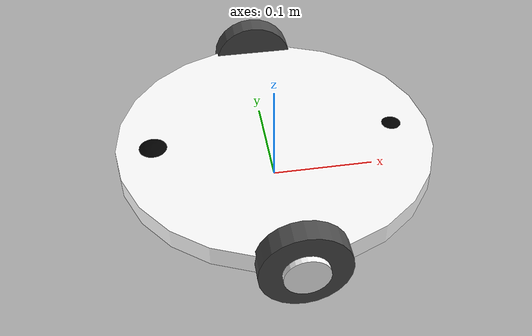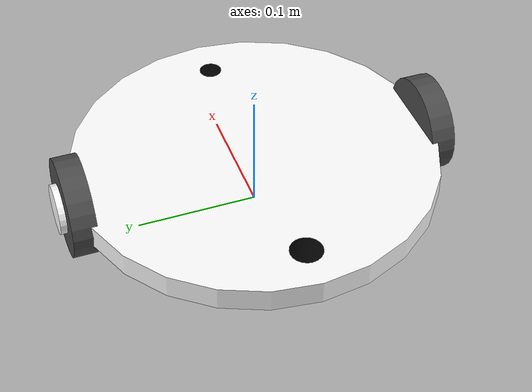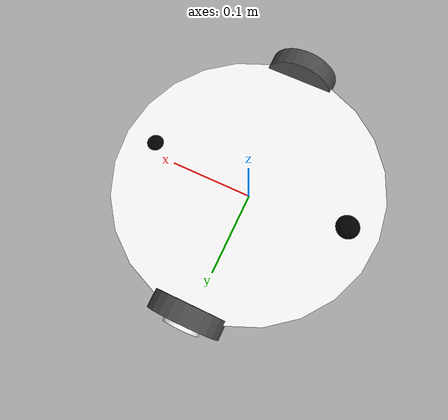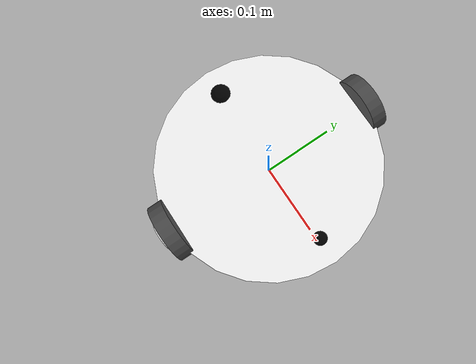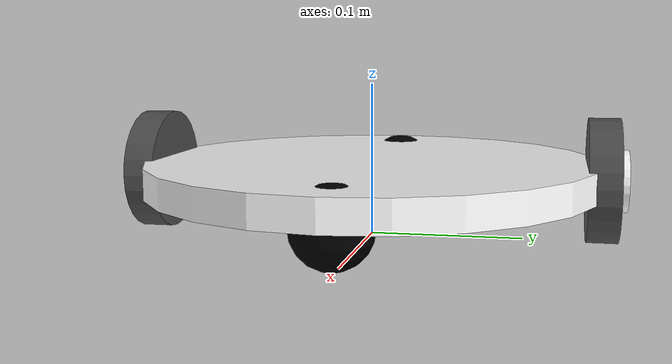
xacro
<?xml version="1.0"?>
<robot name="diff_wheeled_robot" xmlns:xacro="http://ros.org/wiki/xacro">

  <xacro:include filename="$(find imcoders_description)/urdf/wheel.urdf.xacro" />

<!-- Defining the colors used in this robot -->
  <material name="Black">
    <color rgba="0.0 0.0 0.0 1.0"/>
  </material>

  <material name="Red">
    <color rgba="0.8 0.0 0.0 1.0"/>
  </material>

  <material name="White">
    <color rgba="1.0 1.0 1.0 1.0"/>
  </material>

  <material name="Blue">
    <color rgba="0.0 0.0 0.8 1.0"/>
  </material>

  <!-- PROPERTY LIST -->
  <!--All units in m-kg-s-radians unit system -->
  <xacro:property name="M_PI" value="3.1415926535897931" />
  <xacro:property name="M_PI_2" value="1.570796327" />
  <xacro:property name="DEG_TO_RAD" value="0.017453293" />

  <!-- Main body radius and height -->
  <!-- Main Body Cylinder base   -->
  <xacro:property name="base_height" value="0.02" />
  <xacro:property name="base_radius" value="0.15" />
  <xacro:property name="base_mass" value="5" /> <!-- in kg-->

  <!-- caster wheel radius and height -->
  <!-- caster wheel mass -->
  <xacro:property name="caster_f_height" value="0.04" />
  <xacro:property name="caster_f_radius" value="0.025" />
  <xacro:property name="caster_f_mass" value="0.5" /> <!-- in kg-->

  <!-- caster wheel radius and height -->
  <!-- caster wheel mass -->
  <xacro:property name="caster_b_height" value="0.04" />
  <xacro:property name="caster_b_radius" value="0.025" />
  <xacro:property name="caster_b_mass" value="0.5" /> <!-- in kg-->

  <!-- Wheels -->

  <xacro:property name="wheel_mass" value="2.5" /> --> <!-- in kg-->

  <xacro:property name="base_x_origin_to_wheel_origin" value="0.25" />
  <xacro:property name="base_y_origin_to_wheel_origin" value="0.3" />
  <xacro:property name="base_z_origin_to_wheel_origin" value="0.0" />

  <!-- Hokuyo Laser scanner -->
  <xacro:property name="hokuyo_size" value="0.05" />

  <!-- IMcoder IMU -->
  <xacro:property name="imcoder_height" value="0.00545" />
  <xacro:property name="imcoder_radius" value="0.02" />

  <!-- Update rates from plugin sensor. -->
  <!-- Note that must be always [sensor_update_rate >= plugin_update_rate] -->
  <xacro:property name="sensor_update_rate" value="100.0"/>
  <xacro:property name="plugin_update_rate" value="100.0"/>

  <!-- Macro for calculating inertia of cylinder -->
  <xacro:macro name="cylinder_inertia" params="m r h">
    <inertia  ixx="${m*(3*r*r+h*h)/12}" ixy = "0" ixz = "0"
              iyy="${m*(3*r*r+h*h)/12}" iyz = "0"
              izz="${m*r*r/2}" />
  </xacro:macro>

  <!-- BASE-FOOTPRINT -->
  <!-- base_footprint is a fictitious link(frame) that is on the ground right below base_link origin -->
  <link name="base_footprint">
    <inertial>
      <mass value="0.0001" />
      <origin xyz="0 0 0" />
      <inertia ixx="0.0001" ixy="0.0" ixz="0.0"
          iyy="0.0001" iyz="0.0"
          izz="0.0001" />
    </inertial>
    <visual>
        <origin xyz="0 0 0" rpy="0 0 0" />
        <geometry>
            <box size="0.001 0.001 0.001" />
        </geometry>
    </visual>
  </link>

  <gazebo reference="base_footprint">
    <turnGravityOff>false</turnGravityOff>
  </gazebo>

  <joint name="base_footprint_joint" type="fixed">
    <origin xyz="0 0 ${wheel_radius - base_z_origin_to_wheel_origin}" rpy="0 0 0" />
    <parent link="base_footprint"/>
    <child link="base_link" />
  </joint>

  <!-- BASE-LINK -->
  <!--Actual body/chassis of the robot-->
  <link name="base_link">
    <inertial>
      <mass value="${base_mass}" />
      <origin xyz="0 0 0" />
      <!--The 3x3 rotational inertia matrix. -->
        <cylinder_inertia  m="${base_mass}" r="${base_radius}" h="${base_height}" />

    </inertial>
    <visual>
      <origin xyz="0 0 0" rpy="0 0 0" />
      <geometry>

          <cylinder length="${base_height}" radius="${base_radius}" />

      </geometry>
      <material name="White" />
    </visual>
    <collision>
      <origin xyz="0 0 0" rpy="0 0 0 " />
      <geometry>

          <cylinder length="${base_height}" radius="${base_radius}" />

      </geometry>
    </collision>
  </link>
  <gazebo reference="base_link">
    <material>Gazebo/White</material>
    <turnGravityOff>false</turnGravityOff>
  </gazebo>

<!--Caster front  -->

    <link name="caster_front_link">

    <visual>
      <origin xyz="0 0.02 0" rpy="${M_PI/2} 0 0" />
      <geometry>
	<sphere radius="${caster_f_radius}" />
      </geometry>
      <material name="Black" />
    </visual>

      <collision>
        <geometry>

	<sphere radius="${caster_f_radius}" />

        </geometry>
      <origin xyz="0 0.02 0" rpy="${M_PI/2} 0 0" />
      </collision>
      <inertial>
        <mass value="${caster_f_mass}" />
        <origin xyz="0 0 0" />
        <inertia ixx="0.001" ixy="0.0" ixz="0.0"
                 iyy="0.001" iyz="0.0"
                 izz="0.001" />
      </inertial>
    </link>

 <joint name="caster_front_joint" type="fixed">
      <parent link="base_link"/>
      <child link="caster_front_link"/>
      <origin xyz="0.115 0.0 0.007" rpy="${-M_PI/2} 0 0"/>
    </joint>

  <gazebo reference="caster_front_link">
    <turnGravityOff>false</turnGravityOff>
  </gazebo>

<!--Caster back  -->

    <link name="caster_back_link">

    <visual>
      <origin xyz="0.02 0.02 0 " rpy="${M_PI/2} 0 0" />

      <geometry>

	<sphere radius="${caster_b_radius}" />

      </geometry>
      <material name="Black" />
    </visual>

      <collision>
        <geometry>
		<sphere radius="${caster_b_radius}" />
        </geometry>
      <origin xyz="0 0.02 0 " rpy="${M_PI/2} 0 0" />
      </collision>
      <inertial>
        <mass value="${caster_b_mass}" />
        <origin xyz="0 0 0" />
        <inertia ixx="0.001" ixy="0.0" ixz="0.0"
                 iyy="0.001" iyz="0.0"
                 izz="0.001" />
      </inertial>
    </link>

    <joint name="caster_back_joint" type="fixed">
      <parent link="base_link"/>
      <child link="caster_back_link"/>
      <origin xyz="-0.135 0.0 0.009" rpy="${-M_PI/2} 0 0"/>
    </joint>

  <gazebo reference="caster_back_link">
    <turnGravityOff>false</turnGravityOff>
  </gazebo>

<!-- Wheel Definitions -->

  <wheel fb="front" lr="right" parent="base_link" translateX="0" translateY="0.5" flipY="1"/>
  <wheel fb="front" lr="left" parent="base_link" translateX="0" translateY="-0.5" flipY="1"/>

  <!-- IMcoder left -->
  <link name="imcoder_left_link">
    <visual>
      <origin xyz="0 0 0" rpy="${M_PI/2} 0 0" />
      <geometry>
        <cylinder length="${imcoder_height}" radius="${imcoder_radius}" />
      </geometry>
      <material name="White" />
    </visual>
  </link>
  <joint name="imcoder_left_joint" type="fixed">
    <origin xyz="0 -${wheel_height/2 + imcoder_height/2} 0" rpy="0 0 0" />
    <parent link="front_left_wheel"/>
    <child link="imcoder_left_link" />
  </joint>
  <gazebo reference="imcoder_left_link">
    <gravity>true</gravity>
    <sensor name="imcoder_left_sensor" type="imu">
      <always_on>true</always_on>
      <update_rate>${sensor_update_rate}</update_rate>
      <visualize>true</visualize>
      <topic>__default_topic__</topic>
      <plugin filename="libgazebo_ros_imu_sensor.so" name="imu_plugin">
        <topicName>imu_left</topicName>
        <bodyName>imu_left_link</bodyName>
        <updateRateHZ>${plugin_update_rate}</updateRateHZ>
        <gaussianNoise>0.0</gaussianNoise>
        <xyzOffset>0 0 0</xyzOffset>
        <rpyOffset>0 0 0</rpyOffset>
        <frameName>imcoder_left_link</frameName>
      </plugin>
      <pose>0 0 0 0 0 0</pose>
    </sensor>
  </gazebo>

  <!-- IMcoder right -->
  <link name="imcoder_right_link">
    <visual>
      <origin xyz="0 0 0" rpy="${M_PI/2} 0 0" />
      <geometry>
        <cylinder length="${imcoder_height}" radius="${imcoder_radius}" />
      </geometry>
      <material name="White" />
    </visual>
  </link>
  <joint name="imcoder_right_joint" type="fixed">
    <origin xyz="0 ${wheel_height/2 + imcoder_height/2} 0" rpy="0 0 0" />
    <parent link="front_right_wheel"/>
    <child link="imcoder_right_link" />
  </joint>
  <gazebo reference="imcoder_right_link">
    <gravity>true</gravity>
    <sensor name="imcoder_right_sensor" type="imu">
      <always_on>true</always_on>
      <update_rate>${sensor_update_rate}</update_rate>
      <visualize>true</visualize>
      <topic>__default_topic__</topic>
      <plugin filename="libgazebo_ros_imu_sensor.so" name="imu_plugin">
        <topicName>imu_right</topicName>
        <bodyName>imu_right_link</bodyName>
        <updateRateHZ>${plugin_update_rate}</updateRateHZ>
        <gaussianNoise>0.0</gaussianNoise>
        <xyzOffset>0 0 0</xyzOffset>
        <rpyOffset>0 0 0</rpyOffset>
        <frameName>imcoder_right_link</frameName>
      </plugin>
      <pose>0 0 0 0 0 0</pose>
    </sensor>
  </gazebo>

  <!-- Differential drive controller  -->
  <gazebo>
    <plugin name="differential_drive_controller" filename="libgazebo_ros_diff_drive.so">
      <legacyMode>false</legacyMode>
      <rosDebugLevel>Debug</rosDebugLevel>
      <robotNamespace>/</robotNamespace>
      <publishTf>true</publishTf>
      <publishWheelJointState>false</publishWheelJointState>
      <alwaysOn>true</alwaysOn>
      <updateRate>100.0</updateRate>
      <leftJoint>front_left_wheel_joint</leftJoint>
      <rightJoint>front_right_wheel_joint</rightJoint>
      <wheelSeparation>${2*base_radius}</wheelSeparation>
      <wheelDiameter>${2*wheel_radius}</wheelDiameter>
      <wheelTorque>30</wheelTorque>
      <wheelAcceleration>1.8</wheelAcceleration>
      <commandTopic>imcoders_keyboard_teleop/cmd_vel</commandTopic>
      <odometryFrame>imcoders_odom</odometryFrame>
      <odometryTopic>gazebo_odom</odometryTopic>
      <robotBaseFrame>base_footprint</robotBaseFrame>
      <publishWheelTF>true</publishWheelTF>
    </plugin>
  </gazebo>

</robot>

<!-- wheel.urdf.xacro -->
<robot name="wheel" xmlns:xacro="http://www.ros.org/wiki/xacro">

  <!-- Wheels -->
  <xacro:property name="wheel_radius" value="0.04" />
  <xacro:property name="wheel_height" value="0.02" />
  <xacro:property name="wheel_mass" value="2.5" /> <!-- in kg-->

  <xacro:property name="base_x_origin_to_wheel_origin" value="0.25" />
  <xacro:property name="base_y_origin_to_wheel_origin" value="0.3" />
  <xacro:property name="base_z_origin_to_wheel_origin" value="0.0" />

  <xacro:macro name="cylinder_inertia" params="m r h">
    <inertia  ixx="${m*(3*r*r+h*h)/12}" ixy = "0" ixz = "0"
              iyy="${m*(3*r*r+h*h)/12}" iyz = "0"
              izz="${m*r*r/2}" />
  </xacro:macro>

  <xacro:macro name="wheel" params="fb lr parent translateX translateY flipY"> <!--fb : front, back ; lr: left, right -->
    <link name="${fb}_${lr}_wheel">
      <visual>
        <origin xyz="0 0 0" rpy="${flipY*M_PI/2} 0  0 " />
        <geometry>
          <cylinder length="${wheel_height}" radius="${wheel_radius}" />
        </geometry>
        <material name="DarkGray" />
      </visual>
      <collision>
        <origin xyz="0 0 0" rpy="${flipY*M_PI/2} 0 0 " />
        <geometry>
          <cylinder length="${wheel_height}" radius="${wheel_radius}" />
        </geometry>
      </collision>
      <inertial>
        <mass value="${wheel_mass}" />
        <origin xyz="0 0 0" />
        <cylinder_inertia  m="${wheel_mass}" r="${wheel_radius}" h="${wheel_height}" />
      </inertial>
    </link>

    <gazebo reference="${fb}_${lr}_wheel">
      <mu1 value="1.0"/>
      <mu2 value="1.0"/>
      <kp  value="10000000.0" />
      <kd  value="1.0" />
      <fdir1 value="1 0 0"/>
      <material>Gazebo/Grey</material>
      <turnGravityOff>false</turnGravityOff>
    </gazebo>

    <joint name="${fb}_${lr}_wheel_joint" type="continuous">
      <parent link="${parent}"/>
      <child link="${fb}_${lr}_wheel"/>
      <origin xyz="${translateX * base_x_origin_to_wheel_origin} ${translateY * base_y_origin_to_wheel_origin} ${base_z_origin_to_wheel_origin}" rpy="0 0 0" />
      <axis xyz="0 1 0" rpy="0  0" />
      <limit effort="100" velocity="100"/>
      <joint_properties damping="0.0" friction="0.0"/>
    </joint>

    <!-- Transmission is important to link the joints and the controller -->
    <transmission name="${fb}_${lr}_wheel_joint_trans">
      <type>transmission_interface/SimpleTransmission</type>
      <joint name="${fb}_${lr}_wheel_joint" />
      <actuator name="${fb}_${lr}_wheel_joint_motor">
        <hardwareInterface>EffortJointInterface</hardwareInterface>
        <mechanicalReduction>1</mechanicalReduction>
      </actuator>
    </transmission>

  </xacro:macro>
</robot>
